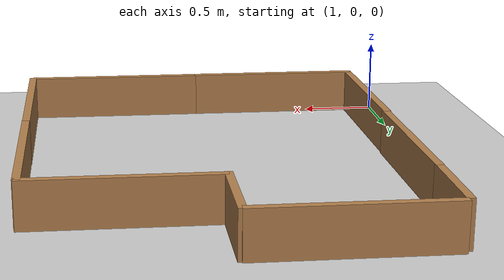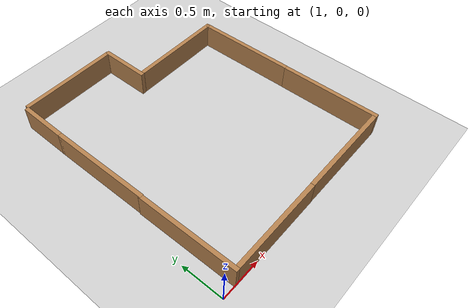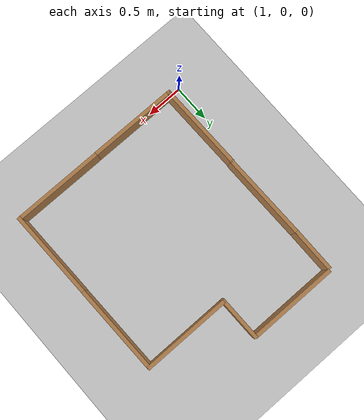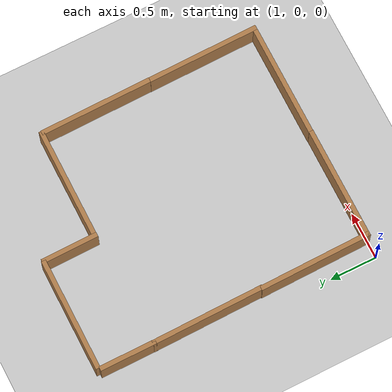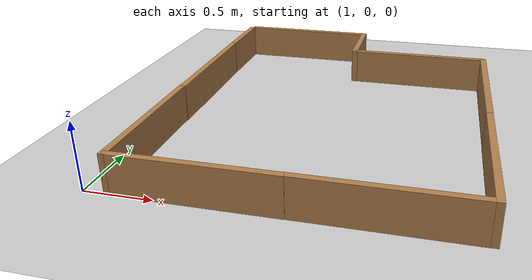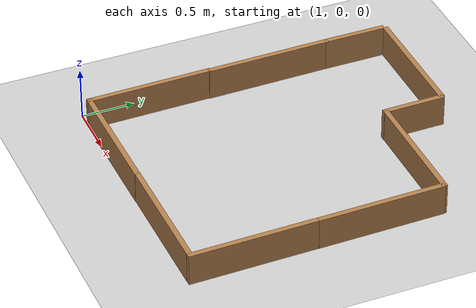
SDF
<sdf version="1.7">
 <world name="default">
  <light name="sun" type="directional">
   <pose>0 0 10 0 -0 0</pose>
   <diffuse>0.8 0.8 0.8 1</diffuse>
   <specular>0.2 0.2 0.2 1</specular>
   <attenuation>
    <range>1000</range>
    <constant>0.9</constant>
    <linear>0.01</linear>
    <quadratic>0.001</quadratic>
   </attenuation>
   <direction>-0.5 0.1 -0.9</direction>
   <spot><inner_angle>0</inner_angle><outer_angle>0</outer_angle><falloff>0</falloff></spot>
  </light>
  <model name="ground_plane">
   <static>1</static>
   <link name="link">
    <collision name="collision">
     <geometry><plane><normal>0 0 1</normal><size>100 100</size></plane></geometry>
     <surface>
      <contact><collide_bitmask>65535</collide_bitmask></contact>
      <friction><ode><mu>100</mu><mu2>50</mu2></ode></friction>
     </surface>
    </collision>
    <visual name="visual">
     <cast_shadows>0</cast_shadows>
     <geometry><plane><normal>0 0 1</normal><size>100 100</size></plane></geometry>
     <material>
      <script><uri>file://media/materials/scripts/gazebo.material</uri><name>Gazebo/Grey</name></script>
     </material>
    </visual>
   </link>
  </model>
  <gravity>0 0 -9.8</gravity>
  <magnetic_field>6e-06 2.3e-05 -4.2e-05</magnetic_field>
  <atmosphere type="adiabatic"/>
  <physics type="ode">
   <max_step_size>0.001</max_step_size>
   <real_time_factor>1</real_time_factor>
   <real_time_update_rate>1000</real_time_update_rate>
  </physics>
  <scene><ambient>0.4 0.4 0.4 1</ambient><background>0.7 0.7 0.7 1</background><shadows>1</shadows></scene>
  <audio><device>default</device></audio>
  <spherical_coordinates>
   <surface_model>EARTH_WGS84</surface_model>
   <latitude_deg>0</latitude_deg>
   <longitude_deg>0</longitude_deg>
   <elevation>0</elevation>
   <heading_deg>0</heading_deg>
  </spherical_coordinates>
  <model name="wall120cm_0">
   <pose>1.76939 0.015976 0 0 -0 0</pose>
   <link name="Wall_11">
    <collision name="Wall_11_Collision">
     <geometry><box><size>1.2 0.05 0.3</size></box></geometry>
     <pose>0 0 0.15 0 -0 0</pose>
    </collision>
    <visual name="Wall_11_Visual">
     <pose>0 0 0.15 0 -0 0</pose>
     <geometry><box><size>1.2 0.05 0.3</size></box></geometry>
     <material>
      <script><uri>file://media/materials/scripts/gazebo.material</uri><name>Gazebo/Wood</name></script>
      <ambient>1 1 1 1</ambient>
     </material>
     <meta><layer>0</layer></meta>
    </visual>
   </link>
   <static>1</static>
  </model>
  <model name="wall120cm_1">
   <pose>2.96032 0.018101 0 0 -0 0</pose>
   <link name="Wall_11">
    <collision name="Wall_11_Collision">
     <geometry><box><size>1.2 0.05 0.3</size></box></geometry>
     <pose>0 0 0.15 0 -0 0</pose>
    </collision>
    <visual name="Wall_11_Visual">
     <pose>0 0 0.15 0 -0 0</pose>
     <geometry><box><size>1.2 0.05 0.3</size></box></geometry>
     <material>
      <script><uri>file://media/materials/scripts/gazebo.material</uri><name>Gazebo/Wood</name></script>
      <ambient>1 1 1 1</ambient>
     </material>
     <meta><layer>0</layer></meta>
    </visual>
   </link>
   <static>1</static>
  </model>
  <model name="wall120cm_4">
   <pose>2.97376 2.38835 0 0 -0 0</pose>
   <link name="Wall_11">
    <collision name="Wall_11_Collision">
     <geometry><box><size>1.2 0.05 0.3</size></box></geometry>
     <pose>0 0 0.15 0 -0 0</pose>
    </collision>
    <visual name="Wall_11_Visual">
     <pose>0 0 0.15 0 -0 0</pose>
     <geometry><box><size>1.2 0.05 0.3</size></box></geometry>
     <material>
      <script><uri>file://media/materials/scripts/gazebo.material</uri><name>Gazebo/Wood</name></script>
      <ambient>1 1 1 1</ambient>
     </material>
     <meta><layer>0</layer></meta>
    </visual>
   </link>
   <static>1</static>
  </model>
  <model name="wall60cm">
   <pose>2.37373 2.66159 0 0 0 -1.56195</pose>
   <link name="Wall_4">
    <collision name="Wall_4_Collision">
     <geometry><box><size>0.6 0.05 0.3</size></box></geometry>
     <pose>0 0 0.15 0 -0 0</pose>
    </collision>
    <visual name="Wall_4_Visual">
     <pose>0 0 0.15 0 -0 0</pose>
     <geometry><box><size>0.6 0.05 0.3</size></box></geometry>
     <material>
      <script><uri>file://media/materials/scripts/gazebo.material</uri><name>Gazebo/Wood</name></script>
      <ambient>1 1 1 1</ambient>
     </material>
     <meta><layer>0</layer></meta>
    </visual>
   </link>
   <static>1</static>
  </model>
  <model name="wall120cm_2_clone">
   <pose>1.17629 0.590708 0 0 -0 1.58406</pose>
   <link name="Wall_11">
    <collision name="Wall_11_Collision">
     <geometry><box><size>1.2 0.05 0.3</size></box></geometry>
     <pose>0 0 0.15 0 -0 0</pose>
    </collision>
    <visual name="Wall_11_Visual">
     <pose>0 0 0.15 0 -0 0</pose>
     <geometry><box><size>1.2 0.05 0.3</size></box></geometry>
     <material>
      <script><uri>file://media/materials/scripts/gazebo.material</uri><name>Gazebo/Wood</name></script>
      <ambient>1 1 1 1</ambient>
     </material>
     <meta><layer>0</layer></meta>
    </visual>
   </link>
   <static>1</static>
  </model>
  <model name="wall120cm_2_clone_0">
   <pose>1.16727 1.76861 0 0 -0 1.58406</pose>
   <link name="Wall_11">
    <collision name="Wall_11_Collision">
     <geometry><box><size>1.2 0.05 0.3</size></box></geometry>
     <pose>0 0 0.15 0 -0 0</pose>
    </collision>
    <visual name="Wall_11_Visual">
     <pose>0 0 0.15 0 -0 0</pose>
     <geometry><box><size>1.2 0.05 0.3</size></box></geometry>
     <material>
      <script><uri>file://media/materials/scripts/gazebo.material</uri><name>Gazebo/Wood</name></script>
      <ambient>1 1 1 1</ambient>
     </material>
     <meta><layer>0</layer></meta>
    </visual>
   </link>
   <static>1</static>
  </model>
  <model name="wall120cm_4_clone">
   <pose>1.77251 2.9459 0 0 -0 0</pose>
   <link name="Wall_11">
    <collision name="Wall_11_Collision">
     <geometry><box><size>1.2 0.05 0.3</size></box></geometry>
     <pose>0 0 0.15 0 -0 0</pose>
    </collision>
    <visual name="Wall_11_Visual">
     <pose>0 0 0.15 0 -0 0</pose>
     <geometry><box><size>1.2 0.05 0.3</size></box></geometry>
     <material>
      <script><uri>file://media/materials/scripts/gazebo.material</uri><name>Gazebo/Wood</name></script>
      <ambient>1 1 1 1</ambient>
     </material>
     <meta><layer>0</layer></meta>
    </visual>
   </link>
   <static>1</static>
  </model>
  <model name="wall60cm_clone">
   <pose>1.16028 2.63502 0 0 0 -1.57264</pose>
   <link name="Wall_4">
    <collision name="Wall_4_Collision">
     <geometry><box><size>0.6 0.05 0.3</size></box></geometry>
     <pose>0 0 0.15 0 -0 0</pose>
    </collision>
    <visual name="Wall_4_Visual">
     <pose>0 0 0.15 0 -0 0</pose>
     <geometry><box><size>0.6 0.05 0.3</size></box></geometry>
     <material>
      <script><uri>file://media/materials/scripts/gazebo.material</uri><name>Gazebo/Wood</name></script>
      <ambient>1 1 1 1</ambient>
     </material>
     <meta><layer>0</layer></meta>
    </visual>
   </link>
   <static>1</static>
  </model>
  <model name="wall120cm_2_clone_clone">
   <pose>3.56215 1.79198 0 0 -0 1.58406</pose>
   <link name="Wall_11">
    <collision name="Wall_11_Collision">
     <geometry><box><size>1.2 0.05 0.3</size></box></geometry>
     <pose>0 0 0.15 0 -0 0</pose>
    </collision>
    <visual name="Wall_11_Visual">
     <pose>0 0 0.15 0 -0 0</pose>
     <geometry><box><size>1.2 0.05 0.3</size></box></geometry>
     <material>
      <script><uri>file://media/materials/scripts/gazebo.material</uri><name>Gazebo/Wood</name></script>
      <ambient>1 1 1 1</ambient>
     </material>
     <meta><layer>0</layer></meta>
    </visual>
   </link>
   <static>1</static>
  </model>
  <model name="wall120cm_2_clone_clone_0">
   <pose>3.5764 0.594378 0 0 -0 1.58406</pose>
   <link name="Wall_11">
    <collision name="Wall_11_Collision">
     <geometry><box><size>1.2 0.05 0.3</size></box></geometry>
     <pose>0 0 0.15 0 -0 0</pose>
    </collision>
    <visual name="Wall_11_Visual">
     <pose>0 0 0.15 0 -0 0</pose>
     <geometry><box><size>1.2 0.05 0.3</size></box></geometry>
     <material>
      <script><uri>file://media/materials/scripts/gazebo.material</uri><name>Gazebo/Wood</name></script>
      <ambient>1 1 1 1</ambient>
     </material>
     <meta><layer>0</layer></meta>
    </visual>
   </link>
   <static>1</static>
  </model>
 </world>
</sdf>
